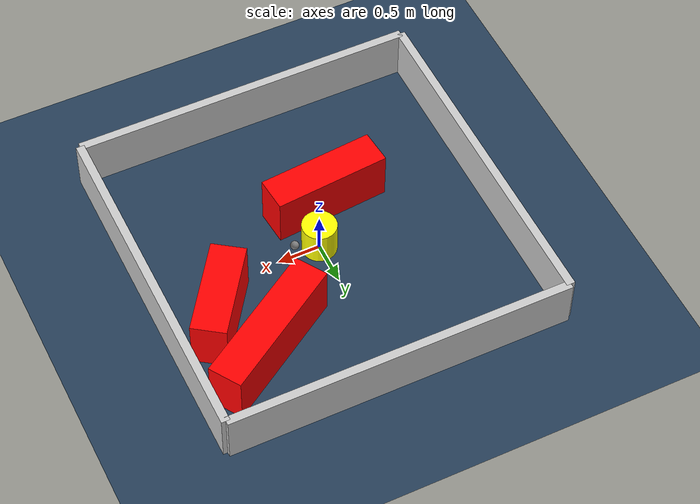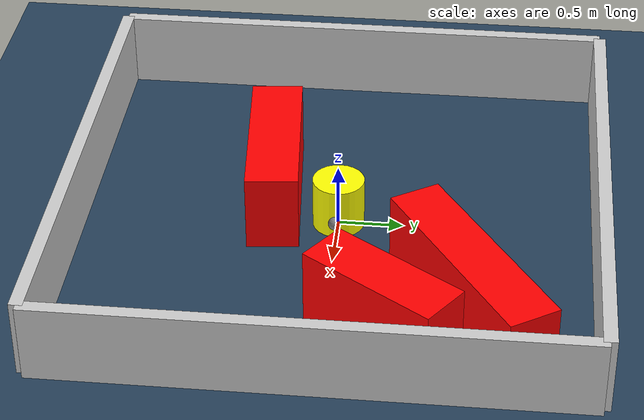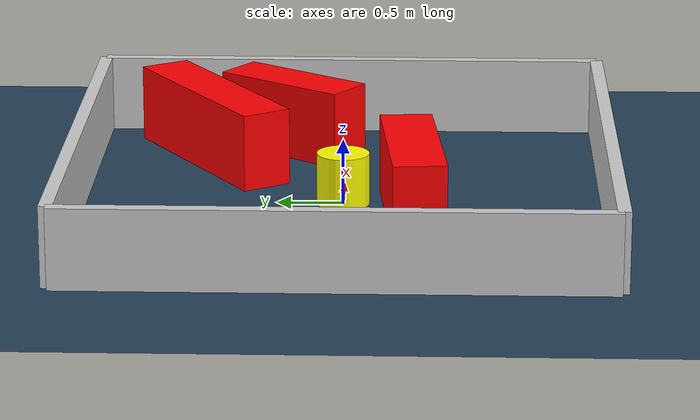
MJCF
<?xml version="1.0" ?>
<mujoco model="generated_environment">
  <option timestep="0.01" integrator="RK4" cone="elliptic"/>
  <default>
    <geom density="1"/>
  </default>
  <asset>
    <texture builtin="gradient" height="3072" rgb1="0.3 0.5 0.7" rgb2="0 0 0" type="skybox" width="512"/>
    <texture builtin="checker" height="300" mark="edge" markrgb="0.8 0.8 0.8" name="groundplane" rgb1="0.2 0.3 0.4" rgb2="0.1 0.2 0.3" type="2d" width="300"/>
    <material name="groundplane" reflectance="0.2" texrepeat="5 5" texture="groundplane" texuniform="true"/>
    <material name="robot" rgba="0.0 1.0 0.0 1"/>
  </asset>
  <worldbody>
    <light dir="0 0 -1" directional="true" pos="0 0 1.5"/>
    <geom condim="4" friction="1.0 0.005 0.001" material="groundplane" name="floor" size="0 0 0.05" type="plane"/>
    <body name="walls">
      <geom name="wall_1" condim="4" pos="-2.0 0.0 0.3" rgba="0.800000011920929 0.800000011920929 0.800000011920929 1.0" size="0.05 2.0 0.3" type="box"/>
      <geom name="wall_2" condim="4" pos="2.0 0.0 0.3" rgba="0.800000011920929 0.800000011920929 0.800000011920929 1.0" size="0.05 2.0 0.3" type="box"/>
      <geom name="wall_3" condim="4" pos="0.0 -2.0 0.3" rgba="0.800000011920929 0.800000011920929 0.800000011920929 1.0" size="2.0 0.05 0.3" type="box"/>
      <geom name="wall_4" condim="4" pos="0.0 2.0 0.3" rgba="0.800000011920929 0.800000011920929 0.800000011920929 1.0" size="2.0 0.05 0.3" type="box"/>
    </body>
    <body name="robot">
      <joint name="joint_x" type="slide" pos="0 0 0" axis="1 0 0"/>
      <joint name="joint_y" type="slide" pos="0 0 0" axis="0 1 0"/>
      <geom name="robot" type="sphere" pos="0.3 0.0 0.2" size="0.05" mass="5." friction="1.0 0.005 0.0001" condim="4" rgba="0.5 0.5 0.5 1.0"/>
      <site name="sensor_ball"/>
    </body>
    <body name="obstacle_movable_1">
      <geom name="obstacle_movable_1" condim="4" pos="0.0 0.0 0.2" euler="0 0 0.0" friction="1.0 0.005 0.001" rgba="1.0 1.0 0.0 1.0" size="0.2 0.2 0.0" type="cylinder" mass="0.1"/>
      <joint type="free"/>
    </body>
    <body name="obstacle_2_static">
      <geom name="obstacle_2_static" condim="4" pos="1.3916960055450096 0.44182752277684334 0.3" euler="0 0 234.985938550956" friction="1.0 0.005 0.001" rgba="1 0 0 1" size="0.5636627800285405 0.2 0.3" type="box"/>
    </body>
    <body name="obstacle_3_static">
      <geom name="obstacle_3_static" condim="4" pos="-0.3076002188262654 -0.5280857191930368 0.3" euler="0 0 185.09060282596505" friction="1.0 0.005 0.001" rgba="1 0 0 1" size="0.6778055384619457 0.2 0.3" type="box"/>
    </body>
    <body name="obstacle_4_static">
      <geom name="obstacle_4_static" condim="4" pos="1.0890528813553777 1.052400486328349 0.3" euler="0 0 212.69962140160092" friction="1.0 0.005 0.001" rgba="1 0 0 1" size="0.8403497583516066 0.2 0.3" type="box"/>
    </body>
  </worldbody>
  <actuator>
    <motor name="actuator_x" joint="joint_x" gear="1" ctrlrange="-1 1"/>
    <motor name="actuator_y" joint="joint_y" gear="1" ctrlrange="-1 1"/>
  </actuator>
</mujoco>
